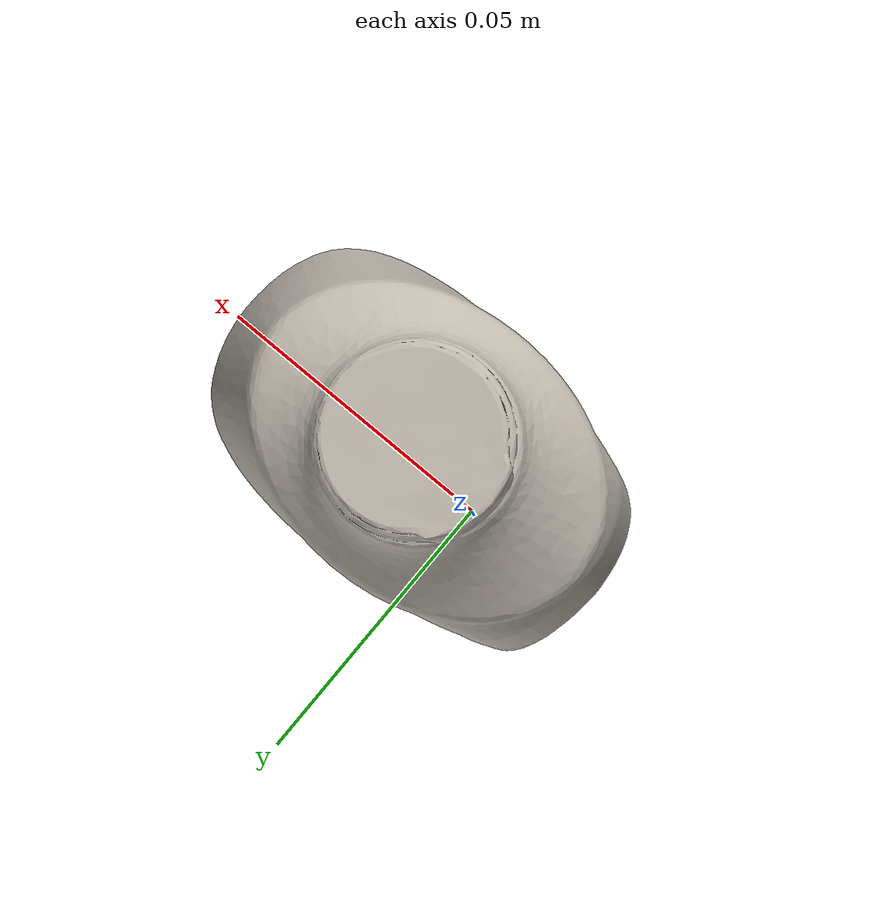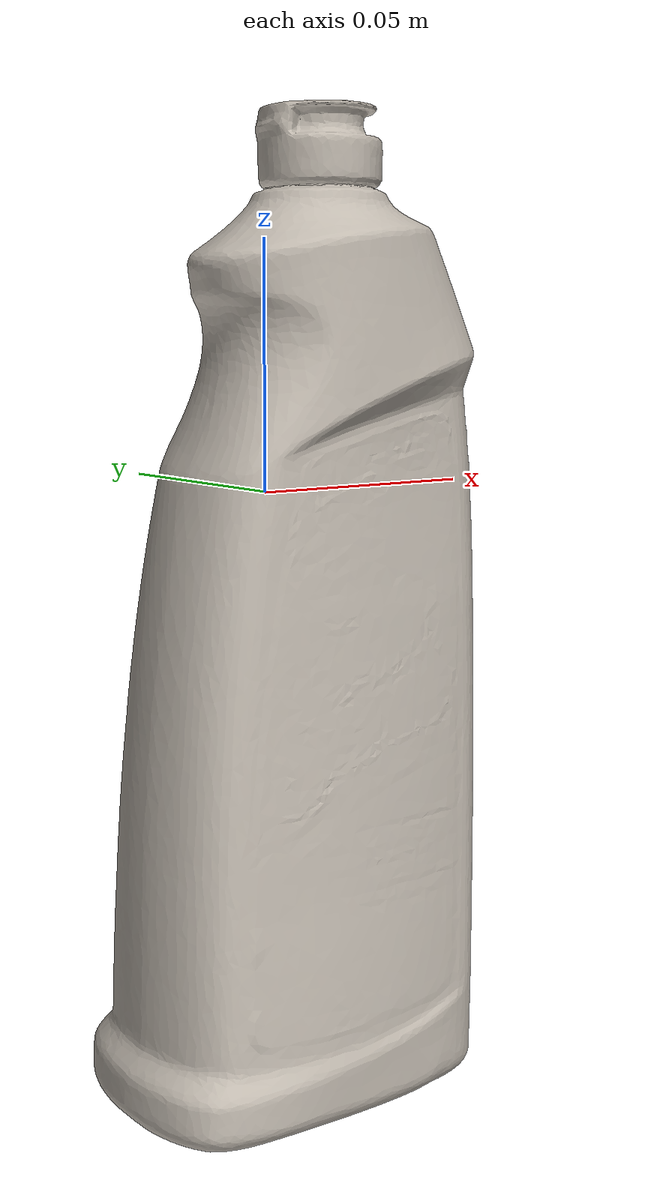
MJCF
<mujoco model="bread">
  <asset>
    <mesh file="nontextured.stl" name="obj_mesh" scale="0.8 0.8 0.8"/>
    <texture file="../../../../../textures/bread.png" type="2d" name="tex-bread" />
    <material name="bread" reflectance="0.7" texrepeat="15 15" texture="tex-bread" texuniform="true"/>
  </asset>
  <worldbody>
    <body>
      <body name="collision">
        <geom pos="0.021663500000000002 -0.011709500000000001 -0.124838" mesh="obj_mesh" type="mesh" solimp="0.998 0.998 0.001" solref="0.001 1" density="50" friction="0.95 0.3 0.1"  material="bread" group="1" condim="4"/>
      </body>
      <body name="visual">
        <geom pos="0.021663500000000002 -0.011709500000000001 -0.124838" mesh="obj_mesh" type="mesh" material="bread"  conaffinity="0" contype="0"  group="0" mass="0.0001"/>
        <geom pos="0.021663500000000002 -0.011709500000000001 -0.124838" mesh="obj_mesh" type="mesh" material="bread"  conaffinity="0" contype="0"  group="1" mass="0.0001"/>
      </body>
      <site rgba="0 0 0 0" size="0.005" pos="0 0 -0.12529" name="bottom_site"/>
      <site rgba="0 0 0 0" size="0.005" pos="0 0 0.12529" name="top_site"/>
      <site rgba="0 0 0 0" size="0.005" pos="0.0512165 0.033849500000000005 0.12529" name="horizontal_radius_site"/>
    </body>
  </worldbody>
</mujoco>
